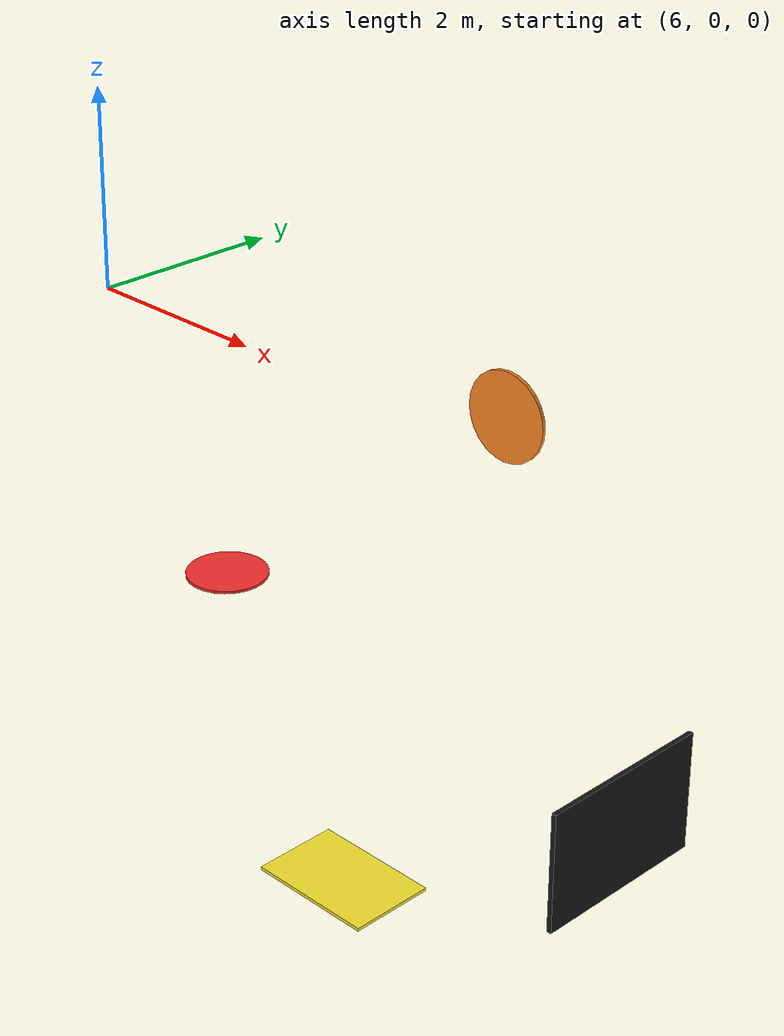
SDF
<?xml version="1.0"?>
<sdf version="1.6">
  <model name="pool_inspection_targets">
    <static>true</static>
    <link name="floor_circle_mid_tank_link">
      <pose>6.00 1.40 -3.645 0 0 0</pose>
      <collision name="target_collision">
        <geometry>
          <cylinder>
            <radius>0.45</radius>
            <length>0.03</length>
          </cylinder>
        </geometry>
      </collision>
      <visual name="target_visual">
        <geometry>
          <cylinder>
            <radius>0.45</radius>
            <length>0.03</length>
          </cylinder>
        </geometry>
        <material>
          <ambient>0.88 0.12 0.12 1</ambient>
          <diffuse>0.98 0.18 0.18 1</diffuse>
        </material>
      </visual>
    </link>
    <link name="floor_rect_far_tank_link">
      <pose>10.80 -1.50 -3.645 0 0 0</pose>
      <collision name="target_collision">
        <geometry>
          <box>
            <size>1.20 0.80 0.03</size>
          </box>
        </geometry>
      </collision>
      <visual name="target_visual">
        <geometry>
          <box>
            <size>1.20 0.80 0.03</size>
          </box>
        </geometry>
        <material>
          <ambient>0.96 0.86 0.12 1</ambient>
          <diffuse>0.98 0.90 0.18 1</diffuse>
        </material>
      </visual>
    </link>
    <link name="wall_rect_far_east_link">
      <pose>13.99 -1.80 -1.40 0 0 0</pose>
      <collision name="target_collision">
        <geometry>
          <box>
            <size>0.04 1.50 1.00</size>
          </box>
        </geometry>
      </collision>
      <visual name="target_visual">
        <geometry>
          <box>
            <size>0.04 1.50 1.00</size>
          </box>
        </geometry>
        <material>
          <ambient>0.12 0.12 0.12 1</ambient>
          <diffuse>0.08 0.08 0.08 1</diffuse>
          <specular>0.02 0.02 0.02 1</specular>
        </material>
      </visual>
    </link>
    <link name="wall_circle_north_link">
      <pose>8.50 3.00 -1.50 1.570796 0 0</pose>
      <collision name="target_collision">
        <geometry>
          <cylinder>
            <radius>0.50</radius>
            <length>0.04</length>
          </cylinder>
        </geometry>
      </collision>
      <visual name="target_visual">
        <geometry>
          <cylinder>
            <radius>0.50</radius>
            <length>0.04</length>
          </cylinder>
        </geometry>
        <material>
          <ambient>0.95 0.45 0.10 1</ambient>
          <diffuse>0.98 0.52 0.14 1</diffuse>
        </material>
      </visual>
    </link>
  </model>
</sdf>
